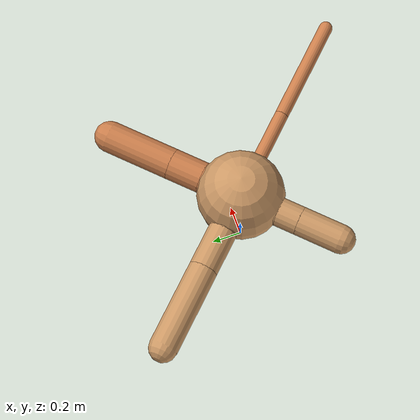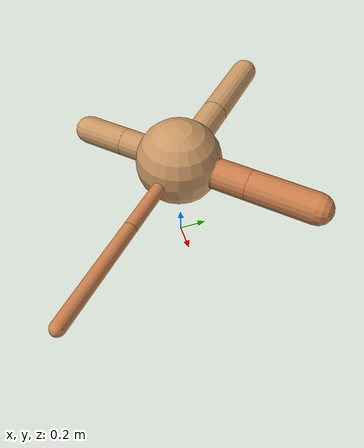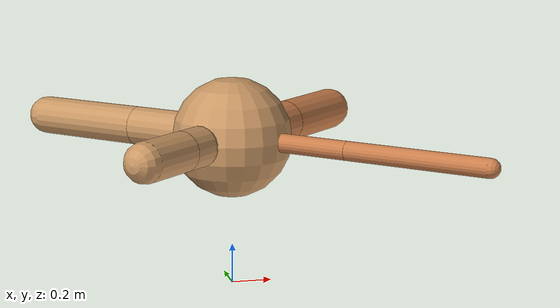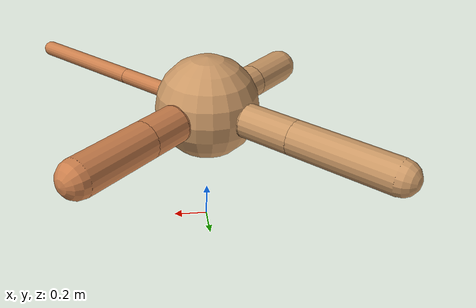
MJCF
<?xml version="1.0" ?>
<mujoco model="ant">

	<compiler angle="degree" coordinate="local" inertiafromgeom="true"/>

	<option integrator="RK4" timestep="0.01"/>

	<custom>

		<numeric data="0.0 0.0 0.55 1.0 0.0 0.0 0.0 0.0 1.0 0.0 -1.0 0.0 -1.0 0.0 1.0" name="init_qpos"/>

	</custom>

	<default>

		<joint armature="1" damping="1" limited="true"/>

		<geom conaffinity="0" condim="3" density="5.0" friction="1.5 0.1 0.1" margin="0.01" rgba="0.8 0.6 0.4 1"/>

	</default>

	<worldbody>

		<body name="torso" pos="0 0 0.75">

			<geom name="torso_geom" pos="0 0 0" size="0.29969774481164047" type="sphere"/>

			<!--joint armature="0" damping="0" limited="false" margin="0.01" name="root" pos="0 0 0" type="free"/-->

			<body name="front_left_leg" pos="0 0 0">

				<geom fromto="0 0 0 0.2 0.2 0" name="aux_1_geom" size="0.10807223335272859" type="capsule" rgba=".8 .5 .3 1"/>

				<body name="aux_1" pos="0.2 0.2 0">

					<joint axis="0 0 1" name="hip_1" pos="0.0 0.0 0.0" range="-40 40" type="hinge"/>

					<geom fromto="0 0 0 0.16429047593801044 0.16429047593801044 0" name="left_leg_geom" size="0.10807223335272859" type="capsule" rgba=".8 .5 .3 1"/>

					<body pos="0.16429047593801044 0.16429047593801044 0" name="front_left_foot">

						<joint axis="-1 1 0" name="ankle_1" pos="0.0 0.0 0.0" range="30 100" type="hinge"/>

						<geom fromto="0 0 0 0.3285809518760209 0.3285809518760209 0" name="left_ankle_geom" size="0.10807223335272859" type="capsule" rgba=".8 .5 .3 1"/>

					</body>

				</body>

			</body>

			<body name="front_right_leg" pos="0 0 0">

				<geom fromto="0 0 0 -0.2 0.2 0" name="aux_2_geom" size="0.09819249871116348" type="capsule"/>

				<body name="aux_2" pos="-0.2 0.2 0">

					<joint axis="0 0 1" name="hip_2" pos="0.0 0.0 0.0" range="-40 40" type="hinge"/>

					<geom fromto="0 0 0 -0.21089491046363779 0.21089491046363779 0" name="right_leg_geom" size="0.09819249871116348" type="capsule"/>

					<body pos="-0.21089491046363779 0.21089491046363779 0" name="front_right_foot">

						<joint axis="1 1 0" name="ankle_2" pos="0.0 0.0 0.0" range="-100 -30" type="hinge"/>

						<geom fromto="0 0 0 -0.42178982092727557 0.42178982092727557 0" name="right_ankle_geom" size="0.09819249871116348" type="capsule"/>

					</body>

				</body>

			</body>

			<body name="left_back_leg" pos="0 0 0">

				<geom fromto="0 0 0 -0.2 -0.2 0" name="aux_3_geom" size="0.09960746134380621" type="capsule"/>

				<body name="aux_3" pos="-0.2 -0.2 0">

					<joint axis="0 0 1" name="hip_3" pos="0.0 0.0 0.0" range="-40 40" type="hinge"/>

					<geom fromto="0 0 0 -0.10608020560757125 -0.10608020560757125 0" name="back_leg_geom" size="0.09960746134380621" type="capsule"/>

					<body pos="-0.10608020560757125 -0.10608020560757125 0" name="left_back_foot">

						<joint axis="-1 1 0" name="ankle_3" pos="0.0 0.0 0.0" range="-100 -30" type="hinge"/>

						<geom fromto="0 0 0 -0.2121604112151425 -0.2121604112151425 0" name="third_ankle_geom" size="0.09960746134380621" type="capsule"/>

					</body>

				</body>

			</body>

			<body name="right_back_leg" pos="0 0 0">

				<geom fromto="0 0 0 0.2 -0.2 0" name="aux_4_geom" size="0.04694769004662213" type="capsule" rgba=".8 .5 .3 1"/>

				<body name="aux_4" pos="0.2 -0.2 0">

					<joint axis="0 0 1" name="hip_4" pos="0.0 0.0 0.0" range="-40 40" type="hinge"/>

					<geom fromto="0 0 0 0.2573308394475657 -0.2573308394475657 0" name="rightback_leg_geom" size="0.04694769004662213" type="capsule" rgba=".8 .5 .3 1"/>

					<body pos="0.2573308394475657 -0.2573308394475657 0" name="right_back_foot">

						<joint axis="1 1 0" name="ankle_4" pos="0.0 0.0 0.0" range="30 100" type="hinge"/>

						<geom fromto="0 0 0 0.5146616788951314 -0.5146616788951314 0" name="fourth_ankle_geom" size="0.04694769004662213" type="capsule" rgba=".8 .5 .3 1"/>

					</body>

				</body>

			</body>

		</body>

	</worldbody>

	<actuator>

		<motor ctrllimited="true" ctrlrange="-1.0 1.0" joint="hip_4" gear="150"/>

		<motor ctrllimited="true" ctrlrange="-1.0 1.0" joint="ankle_4" gear="150"/>

		<motor ctrllimited="true" ctrlrange="-1.0 1.0" joint="hip_1" gear="150"/>

		<motor ctrllimited="true" ctrlrange="-1.0 1.0" joint="ankle_1" gear="150"/>

		<motor ctrllimited="true" ctrlrange="-1.0 1.0" joint="hip_2" gear="150"/>

		<motor ctrllimited="true" ctrlrange="-1.0 1.0" joint="ankle_2" gear="150"/>

		<motor ctrllimited="true" ctrlrange="-1.0 1.0" joint="hip_3" gear="150"/>

		<motor ctrllimited="true" ctrlrange="-1.0 1.0" joint="ankle_3" gear="150"/>

	</actuator>

</mujoco>
